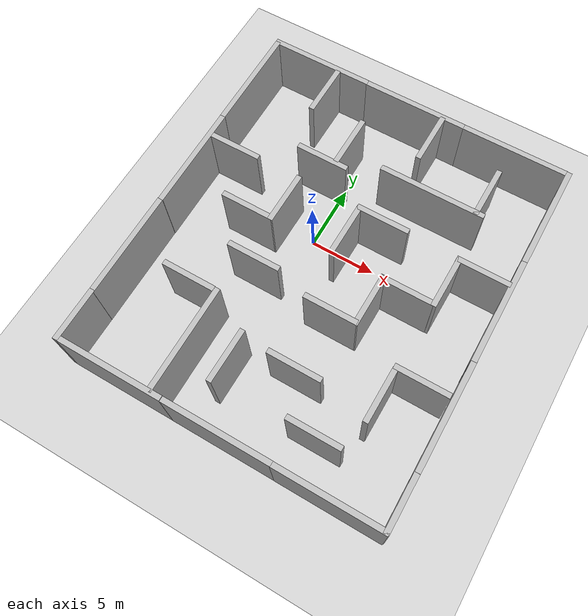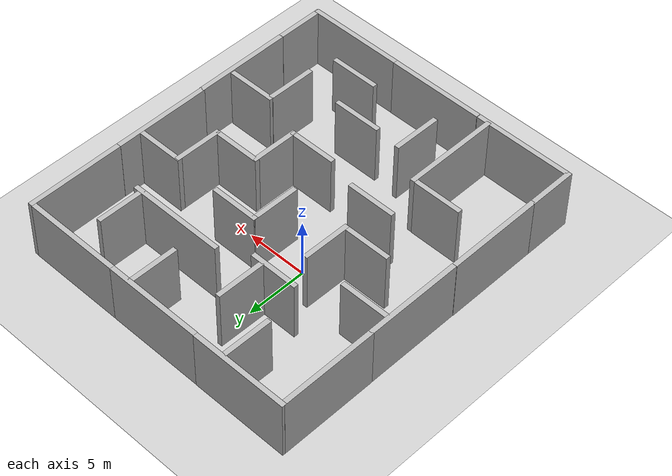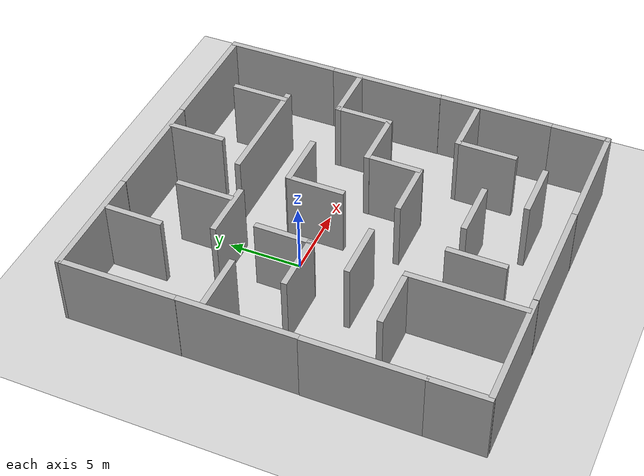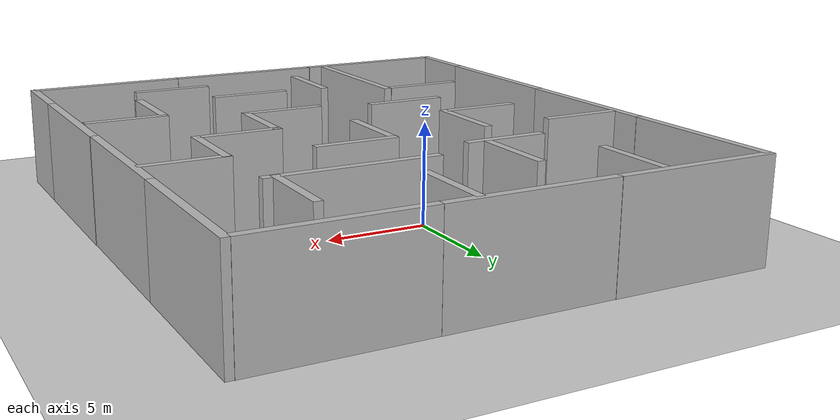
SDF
<sdf version="1.7">
 <world name="default">
  <light name="sun" type="directional">
   <pose>0 0 10 0 -0 0</pose>
   <diffuse>0.8 0.8 0.8 1</diffuse>
   <specular>0.2 0.2 0.2 1</specular>
   <attenuation>
    <range>1000</range>
    <constant>0.9</constant>
    <linear>0.01</linear>
    <quadratic>0.001</quadratic>
   </attenuation>
   <direction>-0.5 0.1 -0.9</direction>
   <spot><inner_angle>0</inner_angle><outer_angle>0</outer_angle><falloff>0</falloff></spot>
  </light>
  <model name="ground_plane">
   <static>1</static>
   <link name="link">
    <collision name="collision">
     <geometry><plane><normal>0 0 1</normal><size>100 100</size></plane></geometry>
     <surface><friction><ode><mu>100</mu><mu2>50</mu2></ode></friction></surface>
    </collision>
    <visual name="visual">
     <cast_shadows>0</cast_shadows>
     <geometry><plane><normal>0 0 1</normal><size>100 100</size></plane></geometry>
     <material>
      <script><uri>file://media/materials/scripts/gazebo.material</uri><name>Gazebo/Grey</name></script>
     </material>
    </visual>
   </link>
  </model>
  <gravity>0 0 -9.8</gravity>
  <magnetic_field>6e-06 2.3e-05 -4.2e-05</magnetic_field>
  <atmosphere type="adiabatic"/>
  <physics type="ode">
   <max_step_size>0.001</max_step_size>
   <real_time_factor>1</real_time_factor>
   <real_time_update_rate>1000</real_time_update_rate>
  </physics>
  <scene><ambient>0.4 0.4 0.4 1</ambient><background>0.7 0.7 0.7 1</background><shadows>1</shadows></scene>
  <audio><device>default</device></audio>
  <spherical_coordinates>
   <surface_model>EARTH_WGS84</surface_model>
   <latitude_deg>0</latitude_deg>
   <longitude_deg>0</longitude_deg>
   <elevation>0</elevation>
   <heading_deg>0</heading_deg>
  </spherical_coordinates>
  <model name="smaze_wall">
   <static>1</static>
   <link name="link">
    <pose>0 0 2.5 0 -0 0</pose>
    <collision name="collision"><geometry><box><size>8 0.4 5</size></box></geometry></collision>
    <visual name="visual">
     <geometry><box><size>8 0.4 5</size></box></geometry>
     <material>
      <script>
       <uri>model://smaze_wall/materials/scripts</uri>
       <uri>model://smaze_wall/materials/textures</uri>
       <name>vrc/smaze_wall</name>
      </script>
     </material>
    </visual>
   </link>
   <pose>-5.87796 11.48 0 0 -0 0</pose>
  </model>
  <model name="smaze_wall_clone">
   <static>1</static>
   <link name="link">
    <pose>0 0 2.5 0 -0 0</pose>
    <collision name="collision"><geometry><box><size>8 0.4 5</size></box></geometry></collision>
    <visual name="visual">
     <geometry><box><size>8 0.4 5</size></box></geometry>
     <material>
      <script>
       <uri>model://smaze_wall/materials/scripts</uri>
       <uri>model://smaze_wall/materials/textures</uri>
       <name>vrc/smaze_wall</name>
      </script>
     </material>
    </visual>
   </link>
   <pose>2.08924 11.4631 0 0 -0 0</pose>
  </model>
  <model name="smaze_wall_clone_0">
   <static>1</static>
   <link name="link">
    <pose>0 0 2.5 0 -0 0</pose>
    <collision name="collision"><geometry><box><size>8 0.4 5</size></box></geometry></collision>
    <visual name="visual">
     <geometry><box><size>8 0.4 5</size></box></geometry>
     <material>
      <script>
       <uri>model://smaze_wall/materials/scripts</uri>
       <uri>model://smaze_wall/materials/textures</uri>
       <name>vrc/smaze_wall</name>
      </script>
     </material>
    </visual>
   </link>
   <pose>10.0651 11.4575 0 0 -0 0</pose>
  </model>
  <model name="smaze_wall_0">
   <static>1</static>
   <link name="link">
    <pose>0 0 2.5 0 -0 0</pose>
    <collision name="collision"><geometry><box><size>8 0.4 5</size></box></geometry></collision>
    <visual name="visual">
     <geometry><box><size>8 0.4 5</size></box></geometry>
     <material>
      <script>
       <uri>model://smaze_wall/materials/scripts</uri>
       <uri>model://smaze_wall/materials/textures</uri>
       <name>vrc/smaze_wall</name>
      </script>
     </material>
    </visual>
   </link>
   <pose>-9.66799 7.46871 0 0 0 -1.56684</pose>
  </model>
  <model name="smaze_wall_0_clone">
   <static>1</static>
   <link name="link">
    <pose>0 0 2.5 0 -0 0</pose>
    <collision name="collision"><geometry><box><size>8 0.4 5</size></box></geometry></collision>
    <visual name="visual">
     <geometry><box><size>8 0.4 5</size></box></geometry>
     <material>
      <script>
       <uri>model://smaze_wall/materials/scripts</uri>
       <uri>model://smaze_wall/materials/textures</uri>
       <name>vrc/smaze_wall</name>
      </script>
     </material>
    </visual>
   </link>
   <pose>-9.62402 -0.444828 0 0 0 -1.56684</pose>
  </model>
  <model name="smaze_wall_0_clone_clone">
   <static>1</static>
   <link name="link">
    <pose>0 0 2.5 0 -0 0</pose>
    <collision name="collision"><geometry><box><size>8 0.4 5</size></box></geometry></collision>
    <visual name="visual">
     <geometry><box><size>8 0.4 5</size></box></geometry>
     <material>
      <script>
       <uri>model://smaze_wall/materials/scripts</uri>
       <uri>model://smaze_wall/materials/textures</uri>
       <name>vrc/smaze_wall</name>
      </script>
     </material>
    </visual>
   </link>
   <pose>-9.61407 -8.42819 0 0 0 -1.56684</pose>
  </model>
  <model name="smaze_wall_0_clone_clone_0">
   <static>1</static>
   <link name="link">
    <pose>0 0 2.5 0 -0 0</pose>
    <collision name="collision"><geometry><box><size>8 0.4 5</size></box></geometry></collision>
    <visual name="visual">
     <geometry><box><size>8 0.4 5</size></box></geometry>
     <material>
      <script>
       <uri>model://smaze_wall/materials/scripts</uri>
       <uri>model://smaze_wall/materials/textures</uri>
       <name>vrc/smaze_wall</name>
      </script>
     </material>
    </visual>
   </link>
   <pose>14.2407 7.6391 0 0 0 -1.56684</pose>
  </model>
  <model name="smaze_wall_0_clone_clone_1">
   <static>1</static>
   <link name="link">
    <pose>0 0 2.5 0 -0 0</pose>
    <collision name="collision"><geometry><box><size>8 0.4 5</size></box></geometry></collision>
    <visual name="visual">
     <geometry><box><size>8 0.4 5</size></box></geometry>
     <material>
      <script>
       <uri>model://smaze_wall/materials/scripts</uri>
       <uri>model://smaze_wall/materials/textures</uri>
       <name>vrc/smaze_wall</name>
      </script>
     </material>
    </visual>
   </link>
   <pose>14.2663 -0.321399 0 0 0 -1.56684</pose>
  </model>
  <model name="smaze_wall_0_clone_clone_2">
   <static>1</static>
   <link name="link">
    <pose>0 0 2.5 0 -0 0</pose>
    <collision name="collision"><geometry><box><size>8 0.4 5</size></box></geometry></collision>
    <visual name="visual">
     <geometry><box><size>8 0.4 5</size></box></geometry>
     <material>
      <script>
       <uri>model://smaze_wall/materials/scripts</uri>
       <uri>model://smaze_wall/materials/textures</uri>
       <name>vrc/smaze_wall</name>
      </script>
     </material>
    </visual>
   </link>
   <pose>14.3176 -8.23074 0 0 0 -1.56684</pose>
  </model>
  <model name="smaze_wall_short">
   <static>1</static>
   <link name="link">
    <pose>0 0 2.5 0 -0 0</pose>
    <collision name="collision"><geometry><box><size>4 0.4 5</size></box></geometry></collision>
    <visual name="visual">
     <geometry><box><size>4 0.4 5</size></box></geometry>
     <material>
      <script>
       <uri>model://smaze_wall_short/materials/scripts</uri>
       <uri>model://smaze_wall_short/materials/textures</uri>
       <name>vrc/smaze_wall_short</name>
      </script>
     </material>
    </visual>
   </link>
   <pose>-9.59773 -14.2731 0 0 0 -1.56779</pose>
  </model>
  <model name="smaze_wall_short_clone">
   <static>1</static>
   <link name="link">
    <pose>0 0 2.5 0 -0 0</pose>
    <collision name="collision"><geometry><box><size>4 0.4 5</size></box></geometry></collision>
    <visual name="visual">
     <geometry><box><size>4 0.4 5</size></box></geometry>
     <material>
      <script>
       <uri>model://smaze_wall_short/materials/scripts</uri>
       <uri>model://smaze_wall_short/materials/textures</uri>
       <name>vrc/smaze_wall_short</name>
      </script>
     </material>
    </visual>
   </link>
   <pose>14.333 -14.2331 0 0 0 -1.56779</pose>
  </model>
  <model name="smaze_wall_clone_0_clone">
   <static>1</static>
   <link name="link">
    <pose>0 0 2.5 0 -0 0</pose>
    <collision name="collision"><geometry><box><size>8 0.4 5</size></box></geometry></collision>
    <visual name="visual">
     <geometry><box><size>8 0.4 5</size></box></geometry>
     <material>
      <script>
       <uri>model://smaze_wall/materials/scripts</uri>
       <uri>model://smaze_wall/materials/textures</uri>
       <name>vrc/smaze_wall</name>
      </script>
     </material>
    </visual>
   </link>
   <pose>10.483 -16.0983 0 0 -0 0</pose>
  </model>
  <model name="smaze_wall_clone_0_clone_0">
   <static>1</static>
   <link name="link">
    <pose>0 0 2.5 0 -0 0</pose>
    <collision name="collision"><geometry><box><size>8 0.4 5</size></box></geometry></collision>
    <visual name="visual">
     <geometry><box><size>8 0.4 5</size></box></geometry>
     <material>
      <script>
       <uri>model://smaze_wall/materials/scripts</uri>
       <uri>model://smaze_wall/materials/textures</uri>
       <name>vrc/smaze_wall</name>
      </script>
     </material>
    </visual>
   </link>
   <pose>2.52604 -16.0895 0 0 -0 0</pose>
  </model>
  <model name="smaze_wall_clone_0_clone_0_clone">
   <static>1</static>
   <link name="link">
    <pose>0 0 2.5 0 -0 0</pose>
    <collision name="collision"><geometry><box><size>8 0.4 5</size></box></geometry></collision>
    <visual name="visual">
     <geometry><box><size>8 0.4 5</size></box></geometry>
     <material>
      <script>
       <uri>model://smaze_wall/materials/scripts</uri>
       <uri>model://smaze_wall/materials/textures</uri>
       <name>vrc/smaze_wall</name>
      </script>
     </material>
    </visual>
   </link>
   <pose>-5.50612 -16.0849 0 0 -0 0</pose>
  </model>
  <model name="smaze_wall_0_clone_clone_2_clone">
   <static>1</static>
   <link name="link">
    <pose>0 0 2.5 0 -0 0</pose>
    <collision name="collision"><geometry><box><size>8 0.4 5</size></box></geometry></collision>
    <visual name="visual">
     <geometry><box><size>8 0.4 5</size></box></geometry>
     <material>
      <script>
       <uri>model://smaze_wall/materials/scripts</uri>
       <uri>model://smaze_wall/materials/textures</uri>
       <name>vrc/smaze_wall</name>
      </script>
     </material>
    </visual>
   </link>
   <pose>-2.4663 -12.1082 0 0 0 -1.56684</pose>
  </model>
  <model name="smaze_wall_short_0">
   <static>1</static>
   <link name="link">
    <pose>0 0 2.5 0 -0 0</pose>
    <collision name="collision"><geometry><box><size>4 0.4 5</size></box></geometry></collision>
    <visual name="visual">
     <geometry><box><size>4 0.4 5</size></box></geometry>
     <material>
      <script>
       <uri>model://smaze_wall_short/materials/scripts</uri>
       <uri>model://smaze_wall_short/materials/textures</uri>
       <name>vrc/smaze_wall_short</name>
      </script>
     </material>
    </visual>
   </link>
   <pose>-4.69073 -8.277 0 0 -0 0</pose>
  </model>
  <model name="smaze_wall_1">
   <static>1</static>
   <link name="link">
    <pose>0 0 2.5 0 -0 0</pose>
    <collision name="collision"><geometry><box><size>8 0.4 5</size></box></geometry></collision>
    <visual name="visual">
     <geometry><box><size>8 0.4 5</size></box></geometry>
     <material>
      <script>
       <uri>model://smaze_wall/materials/scripts</uri>
       <uri>model://smaze_wall/materials/textures</uri>
       <name>vrc/smaze_wall</name>
      </script>
     </material>
    </visual>
   </link>
   <pose>6.47176 5.47494 0 0 -0 0</pose>
  </model>
  <model name="smaze_wall_short_1">
   <static>1</static>
   <link name="link">
    <pose>0 0 2.5 0 -0 0</pose>
    <collision name="collision"><geometry><box><size>4 0.4 5</size></box></geometry></collision>
    <visual name="visual">
     <geometry><box><size>4 0.4 5</size></box></geometry>
     <material>
      <script>
       <uri>model://smaze_wall_short/materials/scripts</uri>
       <uri>model://smaze_wall_short/materials/textures</uri>
       <name>vrc/smaze_wall_short</name>
      </script>
     </material>
    </visual>
   </link>
   <pose>12.1854 1.66978 0 0 -0 0</pose>
  </model>
  <model name="smaze_wall_short_2">
   <static>1</static>
   <link name="link">
    <pose>0 0 2.5 0 -0 0</pose>
    <collision name="collision"><geometry><box><size>4 0.4 5</size></box></geometry></collision>
    <visual name="visual">
     <geometry><box><size>4 0.4 5</size></box></geometry>
     <material>
      <script>
       <uri>model://smaze_wall_short/materials/scripts</uri>
       <uri>model://smaze_wall_short/materials/textures</uri>
       <name>vrc/smaze_wall_short</name>
      </script>
     </material>
    </visual>
   </link>
   <pose>10.3881 -0.208757 0 0 0 -1.5772</pose>
  </model>
  <model name="smaze_wall_short_1_clone">
   <static>1</static>
   <link name="link">
    <pose>0 0 2.5 0 -0 0</pose>
    <collision name="collision"><geometry><box><size>4 0.4 5</size></box></geometry></collision>
    <visual name="visual">
     <geometry><box><size>4 0.4 5</size></box></geometry>
     <material>
      <script>
       <uri>model://smaze_wall_short/materials/scripts</uri>
       <uri>model://smaze_wall_short/materials/textures</uri>
       <name>vrc/smaze_wall_short</name>
      </script>
     </material>
    </visual>
   </link>
   <pose>8.36611 -2.02763 0 0 -0 0</pose>
  </model>
  <model name="smaze_wall_short_2_clone">
   <static>1</static>
   <link name="link">
    <pose>0 0 2.5 0 -0 0</pose>
    <collision name="collision"><geometry><box><size>4 0.4 5</size></box></geometry></collision>
    <visual name="visual">
     <geometry><box><size>4 0.4 5</size></box></geometry>
     <material>
      <script>
       <uri>model://smaze_wall_short/materials/scripts</uri>
       <uri>model://smaze_wall_short/materials/textures</uri>
       <name>vrc/smaze_wall_short</name>
      </script>
     </material>
    </visual>
   </link>
   <pose>6.56602 -3.88119 0 0 0 -1.5772</pose>
  </model>
  <model name="smaze_wall_short_1_clone_clone">
   <static>1</static>
   <link name="link">
    <pose>0 0 2.5 0 -0 0</pose>
    <collision name="collision"><geometry><box><size>4 0.4 5</size></box></geometry></collision>
    <visual name="visual">
     <geometry><box><size>4 0.4 5</size></box></geometry>
     <material>
      <script>
       <uri>model://smaze_wall_short/materials/scripts</uri>
       <uri>model://smaze_wall_short/materials/textures</uri>
       <name>vrc/smaze_wall_short</name>
      </script>
     </material>
    </visual>
   </link>
   <pose>4.65899 -5.68194 0 0 -0 0</pose>
  </model>
  <model name="smaze_wall_short_1_clone_clone_0">
   <static>1</static>
   <link name="link">
    <pose>0 0 2.5 0 -0 0</pose>
    <collision name="collision"><geometry><box><size>4 0.4 5</size></box></geometry></collision>
    <visual name="visual">
     <geometry><box><size>4 0.4 5</size></box></geometry>
     <material>
      <script>
       <uri>model://smaze_wall_short/materials/scripts</uri>
       <uri>model://smaze_wall_short/materials/textures</uri>
       <name>vrc/smaze_wall_short</name>
      </script>
     </material>
    </visual>
   </link>
   <pose>4.57081 -10.1307 0 0 -0 0</pose>
  </model>
  <model name="smaze_wall_short_1_clone_0">
   <static>1</static>
   <link name="link">
    <pose>0 0 2.5 0 -0 0</pose>
    <collision name="collision"><geometry><box><size>4 0.4 5</size></box></geometry></collision>
    <visual name="visual">
     <geometry><box><size>4 0.4 5</size></box></geometry>
     <material>
      <script>
       <uri>model://smaze_wall_short/materials/scripts</uri>
       <uri>model://smaze_wall_short/materials/textures</uri>
       <name>vrc/smaze_wall_short</name>
      </script>
     </material>
    </visual>
   </link>
   <pose>12.0384 -7.04133 0 0 -0 0</pose>
  </model>
  <model name="smaze_wall_short_2_clone_0">
   <static>1</static>
   <link name="link">
    <pose>0 0 2.5 0 -0 0</pose>
    <collision name="collision"><geometry><box><size>4 0.4 5</size></box></geometry></collision>
    <visual name="visual">
     <geometry><box><size>4 0.4 5</size></box></geometry>
     <material>
      <script>
       <uri>model://smaze_wall_short/materials/scripts</uri>
       <uri>model://smaze_wall_short/materials/textures</uri>
       <name>vrc/smaze_wall_short</name>
      </script>
     </material>
    </visual>
   </link>
   <pose>10.2026 -9.12461 0 0 0 -1.5772</pose>
  </model>
  <model name="smaze_wall_short_1_clone_clone_0_clone">
   <static>1</static>
   <link name="link">
    <pose>0 0 2.5 0 -0 0</pose>
    <collision name="collision"><geometry><box><size>4 0.4 5</size></box></geometry></collision>
    <visual name="visual">
     <geometry><box><size>4 0.4 5</size></box></geometry>
     <material>
      <script>
       <uri>model://smaze_wall_short/materials/scripts</uri>
       <uri>model://smaze_wall_short/materials/textures</uri>
       <name>vrc/smaze_wall_short</name>
      </script>
     </material>
    </visual>
   </link>
   <pose>7.78468 -13.2025 0 0 -0 0</pose>
  </model>
  <model name="smaze_wall_short_1_clone_1">
   <static>1</static>
   <link name="link">
    <pose>0 0 2.5 0 -0 0</pose>
    <collision name="collision"><geometry><box><size>4 0.4 5</size></box></geometry></collision>
    <visual name="visual">
     <geometry><box><size>4 0.4 5</size></box></geometry>
     <material>
      <script>
       <uri>model://smaze_wall_short/materials/scripts</uri>
       <uri>model://smaze_wall_short/materials/textures</uri>
       <name>vrc/smaze_wall_short</name>
      </script>
     </material>
    </visual>
   </link>
   <pose>4.511 1.85751 0 0 -0 0</pose>
  </model>
  <model name="smaze_wall_short_2_clone_1">
   <static>1</static>
   <link name="link">
    <pose>0 0 2.5 0 -0 0</pose>
    <collision name="collision"><geometry><box><size>4 0.4 5</size></box></geometry></collision>
    <visual name="visual">
     <geometry><box><size>4 0.4 5</size></box></geometry>
     <material>
      <script>
       <uri>model://smaze_wall_short/materials/scripts</uri>
       <uri>model://smaze_wall_short/materials/textures</uri>
       <name>vrc/smaze_wall_short</name>
      </script>
     </material>
    </visual>
   </link>
   <pose>2.67508 -0.031488 0 0 0 -1.5772</pose>
  </model>
  <model name="smaze_wall_short_2_clone_1_clone">
   <static>1</static>
   <link name="link">
    <pose>0 0 2.5 0 -0 0</pose>
    <collision name="collision"><geometry><box><size>4 0.4 5</size></box></geometry></collision>
    <visual name="visual">
     <geometry><box><size>4 0.4 5</size></box></geometry>
     <material>
      <script>
       <uri>model://smaze_wall_short/materials/scripts</uri>
       <uri>model://smaze_wall_short/materials/textures</uri>
       <name>vrc/smaze_wall_short</name>
      </script>
     </material>
    </visual>
   </link>
   <pose>-2.19741 -0.049126 0 0 0 -1.5772</pose>
  </model>
  <model name="smaze_wall_short_1_clone_1_clone">
   <static>1</static>
   <link name="link">
    <pose>0 0 2.5 0 -0 0</pose>
    <collision name="collision"><geometry><box><size>4 0.4 5</size></box></geometry></collision>
    <visual name="visual">
     <geometry><box><size>4 0.4 5</size></box></geometry>
     <material>
      <script>
       <uri>model://smaze_wall_short/materials/scripts</uri>
       <uri>model://smaze_wall_short/materials/textures</uri>
       <name>vrc/smaze_wall_short</name>
      </script>
     </material>
    </visual>
   </link>
   <pose>-4.12174 -1.84994 0 0 -0 0</pose>
  </model>
  <model name="smaze_wall_short_1_clone_1_clone_0">
   <static>1</static>
   <link name="link">
    <pose>0 0 2.5 0 -0 0</pose>
    <collision name="collision"><geometry><box><size>4 0.4 5</size></box></geometry></collision>
    <visual name="visual">
     <geometry><box><size>4 0.4 5</size></box></geometry>
     <material>
      <script>
       <uri>model://smaze_wall_short/materials/scripts</uri>
       <uri>model://smaze_wall_short/materials/textures</uri>
       <name>vrc/smaze_wall_short</name>
      </script>
     </material>
    </visual>
   </link>
   <pose>-7.49858 1.84254 0 0 -0 0</pose>
  </model>
  <model name="smaze_wall_short_2_clone_1_clone_0">
   <static>1</static>
   <link name="link">
    <pose>0 0 2.5 0 -0 0</pose>
    <collision name="collision"><geometry><box><size>4 0.4 5</size></box></geometry></collision>
    <visual name="visual">
     <geometry><box><size>4 0.4 5</size></box></geometry>
     <material>
      <script>
       <uri>model://smaze_wall_short/materials/scripts</uri>
       <uri>model://smaze_wall_short/materials/textures</uri>
       <name>vrc/smaze_wall_short</name>
      </script>
     </material>
    </visual>
   </link>
   <pose>4.38334 9.4329 0 0 0 -1.5772</pose>
  </model>
  <model name="smaze_wall_short_2_clone_1_clone_0_clone">
   <static>1</static>
   <link name="link">
    <pose>0 0 2.5 0 -0 0</pose>
    <collision name="collision"><geometry><box><size>4 0.4 5</size></box></geometry></collision>
    <visual name="visual">
     <geometry><box><size>4 0.4 5</size></box></geometry>
     <material>
      <script>
       <uri>model://smaze_wall_short/materials/scripts</uri>
       <uri>model://smaze_wall_short/materials/textures</uri>
       <name>vrc/smaze_wall_short</name>
      </script>
     </material>
    </visual>
   </link>
   <pose>-4.35306 9.33948 0 0 0 -1.5772</pose>
  </model>
  <model name="smaze_wall_short_1_clone_1_clone_1">
   <static>1</static>
   <link name="link">
    <pose>0 0 2.5 0 -0 0</pose>
    <collision name="collision"><geometry><box><size>4 0.4 5</size></box></geometry></collision>
    <visual name="visual">
     <geometry><box><size>4 0.4 5</size></box></geometry>
     <material>
      <script>
       <uri>model://smaze_wall_short/materials/scripts</uri>
       <uri>model://smaze_wall_short/materials/textures</uri>
       <name>vrc/smaze_wall_short</name>
      </script>
     </material>
    </visual>
   </link>
   <pose>-1.58138 4.16685 0 0 -0 0</pose>
  </model>
  <model name="smaze_wall_short_2_clone_1_clone_1">
   <static>1</static>
   <link name="link">
    <pose>0 0 2.5 0 -0 0</pose>
    <collision name="collision"><geometry><box><size>4 0.4 5</size></box></geometry></collision>
    <visual name="visual">
     <geometry><box><size>4 0.4 5</size></box></geometry>
     <material>
      <script>
       <uri>model://smaze_wall_short/materials/scripts</uri>
       <uri>model://smaze_wall_short/materials/textures</uri>
       <name>vrc/smaze_wall_short</name>
      </script>
     </material>
    </visual>
   </link>
   <pose>-0.557541 6.28529 0 0 0 -1.5772</pose>
  </model>
  <model name="smaze_wall_short_1_clone_clone_0_clone_0">
   <static>1</static>
   <link name="link">
    <pose>0 0 2.5 0 -0 0</pose>
    <collision name="collision"><geometry><box><size>4 0.4 5</size></box></geometry></collision>
    <visual name="visual">
     <geometry><box><size>4 0.4 5</size></box></geometry>
     <material>
      <script>
       <uri>model://smaze_wall_short/materials/scripts</uri>
       <uri>model://smaze_wall_short/materials/textures</uri>
       <name>vrc/smaze_wall_short</name>
      </script>
     </material>
    </visual>
   </link>
   <pose>-1.70412 -4.90919 0 0 -0 0</pose>
  </model>
  <model name="smaze_wall_short_2_clone_0_clone">
   <static>1</static>
   <link name="link">
    <pose>0 0 2.5 0 -0 0</pose>
    <collision name="collision"><geometry><box><size>4 0.4 5</size></box></geometry></collision>
    <visual name="visual">
     <geometry><box><size>4 0.4 5</size></box></geometry>
     <material>
      <script>
       <uri>model://smaze_wall_short/materials/scripts</uri>
       <uri>model://smaze_wall_short/materials/textures</uri>
       <name>vrc/smaze_wall_short</name>
      </script>
     </material>
    </visual>
   </link>
   <pose>0.462859 -11.7288 0 0 0 -1.5772</pose>
  </model>
  <model name="smaze_wall_short_2_clone_1_clone_0_clone_0">
   <static>1</static>
   <link name="link">
    <pose>0 0 2.5 0 -0 0</pose>
    <collision name="collision"><geometry><box><size>4 0.4 5</size></box></geometry></collision>
    <visual name="visual">
     <geometry><box><size>4 0.4 5</size></box></geometry>
     <material>
      <script>
       <uri>model://smaze_wall_short/materials/scripts</uri>
       <uri>model://smaze_wall_short/materials/textures</uri>
       <name>vrc/smaze_wall_short</name>
      </script>
     </material>
    </visual>
   </link>
   <pose>9.85378 7.33675 0 0 0 -1.5772</pose>
  </model>
 </world>
</sdf>
